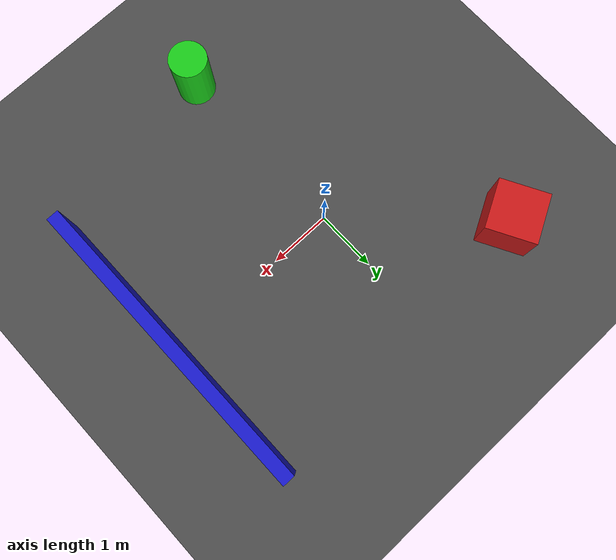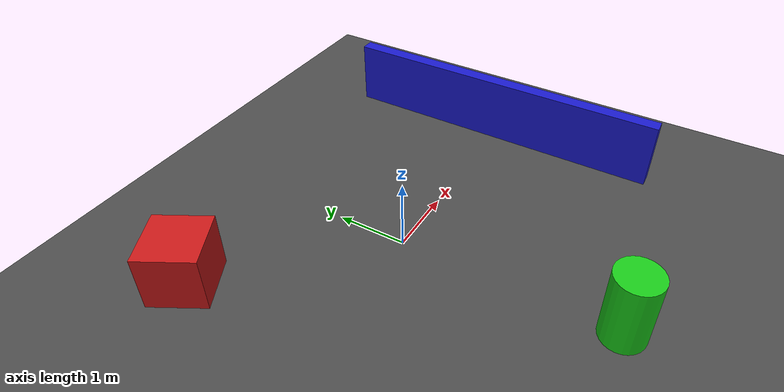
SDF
<?xml version="1.0" ?>
<sdf version="1.6">
  <world name="lidar_world">

    <!-- Configuration visuelle (Fond clair) -->
    <scene>
      <ambient>0.8 0.8 0.8 1.0</ambient>
      <background>0.95 0.95 0.95 1.0</background>
      <sky></sky>
    </scene>

    <!-- Le Sol -->
    <model name="ground_plane">
      <static>true</static>
      <link name="link">
        <collision name="collision">
          <geometry><plane><normal>0 0 1</normal></plane></geometry>
        </collision>
        <visual name="visual">
          <geometry><plane><normal>0 0 1</normal><size>100 100</size></plane></geometry>
          <material><ambient>0.3 0.3 0.3 1</ambient></material>
        </visual>
      </link>
    </model>

    <!-- Lumière -->
    <light type="directional" name="sun">
      <pose>0 0 10 0 0 0</pose>
      <diffuse>0.9 0.9 0.9 1</diffuse>
    </light>

    <!-- Obstacles (Murs, Boite, Cylindre) -->
    <!-- Mur Bleu -->
    <model name="wall_1">
      <pose>3 0 0.5 0 0 0</pose>
      <static>true</static>
      <link name="link">
        <collision name="collision"><geometry><box><size>0.2 5.0 1.0</size></box></geometry></collision>
        <visual name="visual">
            <geometry><box><size>0.2 5.0 1.0</size></box></geometry>
            <material><ambient>0.1 0.1 0.8 1</ambient></material>
        </visual>
      </link>
    </model>

    <!-- Boite Rouge -->
    <model name="box_obstacle">
      <pose>-2 2 0.4 0 0 0.5</pose>
      <static>true</static>
      <link name="link">
        <collision name="collision"><geometry><box><size>0.8 0.8 0.8</size></box></geometry></collision>
        <visual name="visual">
            <geometry><box><size>0.8 0.8 0.8</size></box></geometry>
            <material><ambient>0.8 0.1 0.1 1</ambient></material>
        </visual>
      </link>
    </model>

    <!-- Cylindre Vert -->
    <model name="cylinder_obstacle">
      <pose>0 -3 0.5 0 0 0</pose>
      <static>true</static>
      <link name="link">
        <collision name="collision"><geometry><cylinder><radius>0.3</radius><length>1.0</length></cylinder></geometry></collision>
        <visual name="visual">
            <geometry><cylinder><radius>0.3</radius><length>1.0</length></cylinder></geometry>
            <material><ambient>0.1 0.8 0.1 1</ambient></material>
        </visual>
      </link>
    </model>

  </world>
</sdf>
